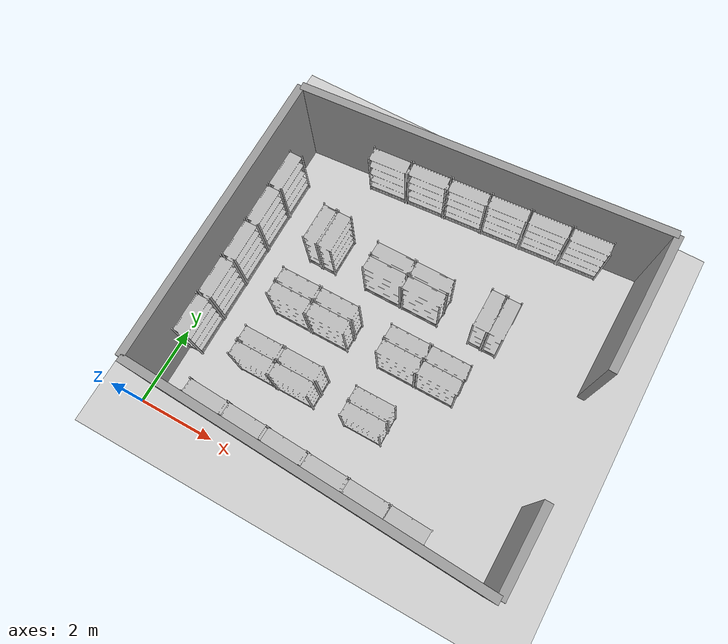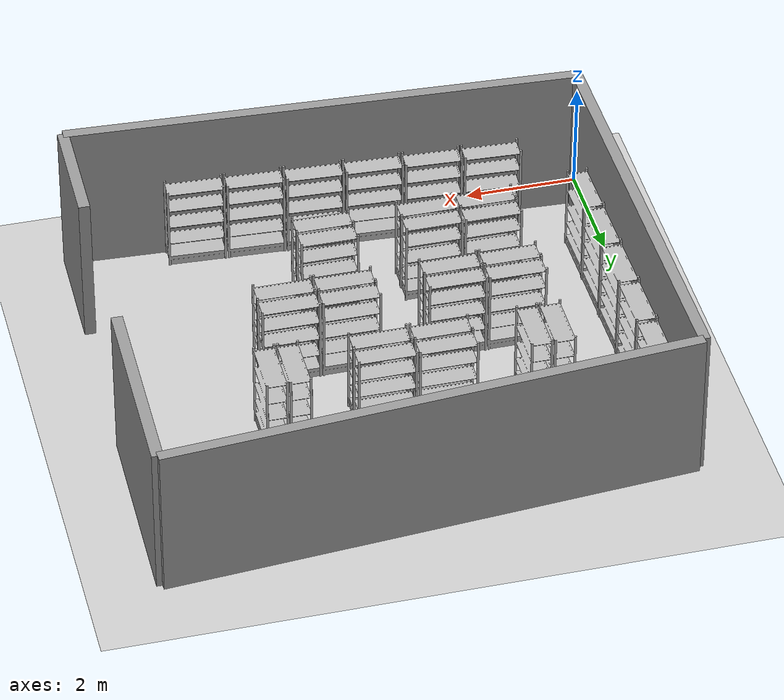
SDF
<sdf version="1.6">
  <world name="default">
    <light name="sun" type="directional">
      <cast_shadows>1</cast_shadows>
      <pose frame="">0 0 10 0 -0 0</pose>
      <diffuse>0.8 0.8 0.8 1</diffuse>
      <specular>0.2 0.2 0.2 1</specular>
      <attenuation>
        <range>1000</range>
        <constant>0.9</constant>
        <linear>0.01</linear>
        <quadratic>0.001</quadratic>
      </attenuation>
      <direction>-0.5 0.1 -0.9</direction>
    </light>
    <model name="ground_plane">
      <static>1</static>
      <link name="link">
        <collision name="collision">
          <geometry>
            <plane>
              <normal>0 0 1</normal>
              <size>100 100</size>
            </plane>
          </geometry>
          <surface>
            <contact>
              <collide_bitmask>65535</collide_bitmask>
              <ode />
            </contact>
            <friction>
              <ode>
                <mu>1000</mu>
                <mu2>1000</mu2>
              </ode>
              <torsional>
                <ode />
              </torsional>
            </friction>
            <bounce />
          </surface>
          <max_contacts>10</max_contacts>
        </collision>
        <visual name="visual">
          <cast_shadows>0</cast_shadows>
          <geometry>
            <plane>
              <normal>0 0 1</normal>
              <size>100 100</size>
            </plane>
          </geometry>
          <material>
            <script>
              <uri>file://media/materials/scripts/gazebo.material</uri>
              <name>Gazebo/Grey</name>
            </script>
          </material>
        </visual>
        <self_collide>0</self_collide>
        <enable_wind>0</enable_wind>
        <kinematic>0</kinematic>
      </link>
    </model>
    <gravity>0 0 -9.8</gravity>
    <magnetic_field>6e-06 2.3e-05 -4.2e-05</magnetic_field>
    <atmosphere type="adiabatic" />
    <physics name="default_physics" default="0" type="ode">
      <max_step_size>0.001</max_step_size>
      <real_time_factor>1</real_time_factor>
      <real_time_update_rate>1000</real_time_update_rate>
    </physics>
    <scene>
      <ambient>0.4 0.4 0.4 1</ambient>
      <background>0.7 0.7 0.7 1</background>
      <shadows>1</shadows>
    </scene>
    <audio>
      <device>default</device>
    </audio>
    <wind />
    <spherical_coordinates>
      <surface_model>EARTH_WGS84</surface_model>
      <latitude_deg>0</latitude_deg>
      <longitude_deg>0</longitude_deg>
      <elevation>0</elevation>
      <heading_deg>0</heading_deg>
    </spherical_coordinates>
    <gui fullscreen="0">
      <camera name="user_camera">
        <pose frame="">5.5458 -17.3868 19.7357 0 0.841797 1.67218</pose>
        <view_controller>orbit</view_controller>
        <projection_type>perspective</projection_type>
      </camera>
    </gui>
    <plugin name="ActorPosesPlugin" filename="libActorPosesPlugin.so" />
    <model name="store_shelf_moduled_0">
      <link name="link">
        <collision name="collision">
          <geometry>
            <mesh>
              <uri>model://store_shelf_moduled/meshes/store_shelf_moduled.dae</uri>
            </mesh>
          </geometry>
        </collision>
        <visual name="visual">
          <geometry>
            <mesh>
              <uri>model://store_shelf_moduled/meshes/store_shelf_moduled.dae</uri>
            </mesh>
          </geometry>
        </visual>
        <inertial>
          <mass>1000</mass>
          <inertia>
            <ixx>840083</ixx>
            <ixy>0</ixy>
            <ixz>0</ixz>
            <iyy>475500</iyy>
            <iyz>0</iyz>
            <izz>1.30208e+06</izz>
          </inertia>
        </inertial>
        <self_collide>0</self_collide>
        <enable_wind>0</enable_wind>
        <kinematic>0</kinematic>
      </link>
      <static>1</static>
      <pose frame="">1.23472 0.5698885 0 0 0 -0.04721763</pose>
    </model>
    <model name="store_shelf_moduled_1">
      <link name="link">
        <collision name="collision">
          <geometry>
            <mesh>
              <uri>model://store_shelf_moduled/meshes/store_shelf_moduled.dae</uri>
            </mesh>
          </geometry>
        </collision>
        <visual name="visual">
          <geometry>
            <mesh>
              <uri>model://store_shelf_moduled/meshes/store_shelf_moduled.dae</uri>
            </mesh>
          </geometry>
        </visual>
        <inertial>
          <mass>1000</mass>
          <inertia>
            <ixx>840083</ixx>
            <ixy>0</ixy>
            <ixz>0</ixz>
            <iyy>475500</iyy>
            <iyz>0</iyz>
            <izz>1.30208e+06</izz>
          </inertia>
        </inertial>
        <self_collide>0</self_collide>
        <enable_wind>0</enable_wind>
        <kinematic>0</kinematic>
      </link>
      <static>1</static>
      <pose frame="">2.29472 0.5198885 0 0 0 -0.04721763</pose>
    </model>
    <model name="store_shelf_moduled_2">
      <link name="link">
        <collision name="collision">
          <geometry>
            <mesh>
              <uri>model://store_shelf_moduled/meshes/store_shelf_moduled.dae</uri>
            </mesh>
          </geometry>
        </collision>
        <visual name="visual">
          <geometry>
            <mesh>
              <uri>model://store_shelf_moduled/meshes/store_shelf_moduled.dae</uri>
            </mesh>
          </geometry>
        </visual>
        <inertial>
          <mass>1000</mass>
          <inertia>
            <ixx>840083</ixx>
            <ixy>0</ixy>
            <ixz>0</ixz>
            <iyy>475500</iyy>
            <iyz>0</iyz>
            <izz>1.30208e+06</izz>
          </inertia>
        </inertial>
        <self_collide>0</self_collide>
        <enable_wind>0</enable_wind>
        <kinematic>0</kinematic>
      </link>
      <static>1</static>
      <pose frame="">3.35472 0.4698885 0 0 0 -0.04721763</pose>
    </model>
    <model name="store_shelf_moduled_3">
      <link name="link">
        <collision name="collision">
          <geometry>
            <mesh>
              <uri>model://store_shelf_moduled/meshes/store_shelf_moduled.dae</uri>
            </mesh>
          </geometry>
        </collision>
        <visual name="visual">
          <geometry>
            <mesh>
              <uri>model://store_shelf_moduled/meshes/store_shelf_moduled.dae</uri>
            </mesh>
          </geometry>
        </visual>
        <inertial>
          <mass>1000</mass>
          <inertia>
            <ixx>840083</ixx>
            <ixy>0</ixy>
            <ixz>0</ixz>
            <iyy>475500</iyy>
            <iyz>0</iyz>
            <izz>1.30208e+06</izz>
          </inertia>
        </inertial>
        <self_collide>0</self_collide>
        <enable_wind>0</enable_wind>
        <kinematic>0</kinematic>
      </link>
      <static>1</static>
      <pose frame="">4.41472 0.4198885 0 0 0 -0.04721763</pose>
    </model>
    <model name="store_shelf_moduled_4">
      <link name="link">
        <collision name="collision">
          <geometry>
            <mesh>
              <uri>model://store_shelf_moduled/meshes/store_shelf_moduled.dae</uri>
            </mesh>
          </geometry>
        </collision>
        <visual name="visual">
          <geometry>
            <mesh>
              <uri>model://store_shelf_moduled/meshes/store_shelf_moduled.dae</uri>
            </mesh>
          </geometry>
        </visual>
        <inertial>
          <mass>1000</mass>
          <inertia>
            <ixx>840083</ixx>
            <ixy>0</ixy>
            <ixz>0</ixz>
            <iyy>475500</iyy>
            <iyz>0</iyz>
            <izz>1.30208e+06</izz>
          </inertia>
        </inertial>
        <self_collide>0</self_collide>
        <enable_wind>0</enable_wind>
        <kinematic>0</kinematic>
      </link>
      <static>1</static>
      <pose frame="">5.47472 0.3698885 0 0 0 -0.04721763</pose>
    </model>
    <model name="store_shelf_moduled_5">
      <link name="link">
        <collision name="collision">
          <geometry>
            <mesh>
              <uri>model://store_shelf_moduled/meshes/store_shelf_moduled.dae</uri>
            </mesh>
          </geometry>
        </collision>
        <visual name="visual">
          <geometry>
            <mesh>
              <uri>model://store_shelf_moduled/meshes/store_shelf_moduled.dae</uri>
            </mesh>
          </geometry>
        </visual>
        <inertial>
          <mass>1000</mass>
          <inertia>
            <ixx>840083</ixx>
            <ixy>0</ixy>
            <ixz>0</ixz>
            <iyy>475500</iyy>
            <iyz>0</iyz>
            <izz>1.30208e+06</izz>
          </inertia>
        </inertial>
        <self_collide>0</self_collide>
        <enable_wind>0</enable_wind>
        <kinematic>0</kinematic>
      </link>
      <static>1</static>
      <pose frame="">6.53472 0.3198886 0 0 0 -0.04721763</pose>
    </model>
    <model name="store_shelf_moduled_6">
      <link name="link">
        <collision name="collision">
          <geometry>
            <mesh>
              <uri>model://store_shelf_moduled/meshes/store_shelf_moduled.dae</uri>
            </mesh>
          </geometry>
        </collision>
        <visual name="visual">
          <geometry>
            <mesh>
              <uri>model://store_shelf_moduled/meshes/store_shelf_moduled.dae</uri>
            </mesh>
          </geometry>
        </visual>
        <inertial>
          <mass>1000</mass>
          <inertia>
            <ixx>840083</ixx>
            <ixy>0</ixy>
            <ixz>0</ixz>
            <iyy>475500</iyy>
            <iyz>0</iyz>
            <izz>1.30208e+06</izz>
          </inertia>
        </inertial>
        <self_collide>0</self_collide>
        <enable_wind>0</enable_wind>
        <kinematic>0</kinematic>
      </link>
      <static>1</static>
      <pose frame="">8.347719 8.560299 0 0 0 -3.064327</pose>
    </model>
    <model name="store_shelf_moduled_7">
      <link name="link">
        <collision name="collision">
          <geometry>
            <mesh>
              <uri>model://store_shelf_moduled/meshes/store_shelf_moduled.dae</uri>
            </mesh>
          </geometry>
        </collision>
        <visual name="visual">
          <geometry>
            <mesh>
              <uri>model://store_shelf_moduled/meshes/store_shelf_moduled.dae</uri>
            </mesh>
          </geometry>
        </visual>
        <inertial>
          <mass>1000</mass>
          <inertia>
            <ixx>840083</ixx>
            <ixy>0</ixy>
            <ixz>0</ixz>
            <iyy>475500</iyy>
            <iyz>0</iyz>
            <izz>1.30208e+06</izz>
          </inertia>
        </inertial>
        <self_collide>0</self_collide>
        <enable_wind>0</enable_wind>
        <kinematic>0</kinematic>
      </link>
      <static>1</static>
      <pose frame="">7.287719 8.480298 0 0 0 -3.064327</pose>
    </model>
    <model name="store_shelf_moduled_8">
      <link name="link">
        <collision name="collision">
          <geometry>
            <mesh>
              <uri>model://store_shelf_moduled/meshes/store_shelf_moduled.dae</uri>
            </mesh>
          </geometry>
        </collision>
        <visual name="visual">
          <geometry>
            <mesh>
              <uri>model://store_shelf_moduled/meshes/store_shelf_moduled.dae</uri>
            </mesh>
          </geometry>
        </visual>
        <inertial>
          <mass>1000</mass>
          <inertia>
            <ixx>840083</ixx>
            <ixy>0</ixy>
            <ixz>0</ixz>
            <iyy>475500</iyy>
            <iyz>0</iyz>
            <izz>1.30208e+06</izz>
          </inertia>
        </inertial>
        <self_collide>0</self_collide>
        <enable_wind>0</enable_wind>
        <kinematic>0</kinematic>
      </link>
      <static>1</static>
      <pose frame="">6.227719 8.400298 0 0 0 -3.064327</pose>
    </model>
    <model name="store_shelf_moduled_9">
      <link name="link">
        <collision name="collision">
          <geometry>
            <mesh>
              <uri>model://store_shelf_moduled/meshes/store_shelf_moduled.dae</uri>
            </mesh>
          </geometry>
        </collision>
        <visual name="visual">
          <geometry>
            <mesh>
              <uri>model://store_shelf_moduled/meshes/store_shelf_moduled.dae</uri>
            </mesh>
          </geometry>
        </visual>
        <inertial>
          <mass>1000</mass>
          <inertia>
            <ixx>840083</ixx>
            <ixy>0</ixy>
            <ixz>0</ixz>
            <iyy>475500</iyy>
            <iyz>0</iyz>
            <izz>1.30208e+06</izz>
          </inertia>
        </inertial>
        <self_collide>0</self_collide>
        <enable_wind>0</enable_wind>
        <kinematic>0</kinematic>
      </link>
      <static>1</static>
      <pose frame="">5.177719 8.320298 0 0 0 -3.064327</pose>
    </model>
    <model name="store_shelf_moduled_10">
      <link name="link">
        <collision name="collision">
          <geometry>
            <mesh>
              <uri>model://store_shelf_moduled/meshes/store_shelf_moduled.dae</uri>
            </mesh>
          </geometry>
        </collision>
        <visual name="visual">
          <geometry>
            <mesh>
              <uri>model://store_shelf_moduled/meshes/store_shelf_moduled.dae</uri>
            </mesh>
          </geometry>
        </visual>
        <inertial>
          <mass>1000</mass>
          <inertia>
            <ixx>840083</ixx>
            <ixy>0</ixy>
            <ixz>0</ixz>
            <iyy>475500</iyy>
            <iyz>0</iyz>
            <izz>1.30208e+06</izz>
          </inertia>
        </inertial>
        <self_collide>0</self_collide>
        <enable_wind>0</enable_wind>
        <kinematic>0</kinematic>
      </link>
      <static>1</static>
      <pose frame="">4.117719 8.240298 0 0 0 -3.064327</pose>
    </model>
    <model name="store_shelf_moduled_11">
      <link name="link">
        <collision name="collision">
          <geometry>
            <mesh>
              <uri>model://store_shelf_moduled/meshes/store_shelf_moduled.dae</uri>
            </mesh>
          </geometry>
        </collision>
        <visual name="visual">
          <geometry>
            <mesh>
              <uri>model://store_shelf_moduled/meshes/store_shelf_moduled.dae</uri>
            </mesh>
          </geometry>
        </visual>
        <inertial>
          <mass>1000</mass>
          <inertia>
            <ixx>840083</ixx>
            <ixy>0</ixy>
            <ixz>0</ixz>
            <iyy>475500</iyy>
            <iyz>0</iyz>
            <izz>1.30208e+06</izz>
          </inertia>
        </inertial>
        <self_collide>0</self_collide>
        <enable_wind>0</enable_wind>
        <kinematic>0</kinematic>
      </link>
      <static>1</static>
      <pose frame="">3.057719 8.150298 0 0 0 -3.064327</pose>
    </model>
    <model name="store_shelf_moduled_12">
      <link name="link">
        <collision name="collision">
          <geometry>
            <mesh>
              <uri>model://store_shelf_moduled/meshes/store_shelf_moduled.dae</uri>
            </mesh>
          </geometry>
        </collision>
        <visual name="visual">
          <geometry>
            <mesh>
              <uri>model://store_shelf_moduled/meshes/store_shelf_moduled.dae</uri>
            </mesh>
          </geometry>
        </visual>
        <inertial>
          <mass>1000</mass>
          <inertia>
            <ixx>840083</ixx>
            <ixy>0</ixy>
            <ixz>0</ixz>
            <iyy>475500</iyy>
            <iyz>0</iyz>
            <izz>1.30208e+06</izz>
          </inertia>
        </inertial>
        <self_collide>0</self_collide>
        <enable_wind>0</enable_wind>
        <kinematic>0</kinematic>
      </link>
      <static>1</static>
      <pose frame="">0.2099943 6.971067 0 0 0 -1.56013</pose>
    </model>
    <model name="store_shelf_moduled_13">
      <link name="link">
        <collision name="collision">
          <geometry>
            <mesh>
              <uri>model://store_shelf_moduled/meshes/store_shelf_moduled.dae</uri>
            </mesh>
          </geometry>
        </collision>
        <visual name="visual">
          <geometry>
            <mesh>
              <uri>model://store_shelf_moduled/meshes/store_shelf_moduled.dae</uri>
            </mesh>
          </geometry>
        </visual>
        <inertial>
          <mass>1000</mass>
          <inertia>
            <ixx>840083</ixx>
            <ixy>0</ixy>
            <ixz>0</ixz>
            <iyy>475500</iyy>
            <iyz>0</iyz>
            <izz>1.30208e+06</izz>
          </inertia>
        </inertial>
        <self_collide>0</self_collide>
        <enable_wind>0</enable_wind>
        <kinematic>0</kinematic>
      </link>
      <static>1</static>
      <pose frame="">0.2199943 5.911067 0 0 0 -1.56013</pose>
    </model>
    <model name="store_shelf_moduled_14">
      <link name="link">
        <collision name="collision">
          <geometry>
            <mesh>
              <uri>model://store_shelf_moduled/meshes/store_shelf_moduled.dae</uri>
            </mesh>
          </geometry>
        </collision>
        <visual name="visual">
          <geometry>
            <mesh>
              <uri>model://store_shelf_moduled/meshes/store_shelf_moduled.dae</uri>
            </mesh>
          </geometry>
        </visual>
        <inertial>
          <mass>1000</mass>
          <inertia>
            <ixx>840083</ixx>
            <ixy>0</ixy>
            <ixz>0</ixz>
            <iyy>475500</iyy>
            <iyz>0</iyz>
            <izz>1.30208e+06</izz>
          </inertia>
        </inertial>
        <self_collide>0</self_collide>
        <enable_wind>0</enable_wind>
        <kinematic>0</kinematic>
      </link>
      <static>1</static>
      <pose frame="">0.2299943 4.851067 0 0 0 -1.56013</pose>
    </model>
    <model name="store_shelf_moduled_15">
      <link name="link">
        <collision name="collision">
          <geometry>
            <mesh>
              <uri>model://store_shelf_moduled/meshes/store_shelf_moduled.dae</uri>
            </mesh>
          </geometry>
        </collision>
        <visual name="visual">
          <geometry>
            <mesh>
              <uri>model://store_shelf_moduled/meshes/store_shelf_moduled.dae</uri>
            </mesh>
          </geometry>
        </visual>
        <inertial>
          <mass>1000</mass>
          <inertia>
            <ixx>840083</ixx>
            <ixy>0</ixy>
            <ixz>0</ixz>
            <iyy>475500</iyy>
            <iyz>0</iyz>
            <izz>1.30208e+06</izz>
          </inertia>
        </inertial>
        <self_collide>0</self_collide>
        <enable_wind>0</enable_wind>
        <kinematic>0</kinematic>
      </link>
      <static>1</static>
      <pose frame="">0.2399943 3.791067 0 0 0 -1.56013</pose>
    </model>
    <model name="store_shelf_moduled_16">
      <link name="link">
        <collision name="collision">
          <geometry>
            <mesh>
              <uri>model://store_shelf_moduled/meshes/store_shelf_moduled.dae</uri>
            </mesh>
          </geometry>
        </collision>
        <visual name="visual">
          <geometry>
            <mesh>
              <uri>model://store_shelf_moduled/meshes/store_shelf_moduled.dae</uri>
            </mesh>
          </geometry>
        </visual>
        <inertial>
          <mass>1000</mass>
          <inertia>
            <ixx>840083</ixx>
            <ixy>0</ixy>
            <ixz>0</ixz>
            <iyy>475500</iyy>
            <iyz>0</iyz>
            <izz>1.30208e+06</izz>
          </inertia>
        </inertial>
        <self_collide>0</self_collide>
        <enable_wind>0</enable_wind>
        <kinematic>0</kinematic>
      </link>
      <static>1</static>
      <pose frame="">0.2499943 2.731067 0 0 0 -1.56013</pose>
    </model>
    <model name="store_shelf_moduled_17">
      <link name="link">
        <collision name="collision">
          <geometry>
            <mesh>
              <uri>model://store_shelf_moduled/meshes/store_shelf_moduled.dae</uri>
            </mesh>
          </geometry>
        </collision>
        <visual name="visual">
          <geometry>
            <mesh>
              <uri>model://store_shelf_moduled/meshes/store_shelf_moduled.dae</uri>
            </mesh>
          </geometry>
        </visual>
        <inertial>
          <mass>1000</mass>
          <inertia>
            <ixx>840083</ixx>
            <ixy>0</ixy>
            <ixz>0</ixz>
            <iyy>475500</iyy>
            <iyz>0</iyz>
            <izz>1.30208e+06</izz>
          </inertia>
        </inertial>
        <self_collide>0</self_collide>
        <enable_wind>0</enable_wind>
        <kinematic>0</kinematic>
      </link>
      <static>1</static>
      <pose frame="">3.32 5.49 0 0 0 0</pose>
    </model>
    <model name="store_shelf_moduled_18">
      <link name="link">
        <collision name="collision">
          <geometry>
            <mesh>
              <uri>model://store_shelf_moduled/meshes/store_shelf_moduled.dae</uri>
            </mesh>
          </geometry>
        </collision>
        <visual name="visual">
          <geometry>
            <mesh>
              <uri>model://store_shelf_moduled/meshes/store_shelf_moduled.dae</uri>
            </mesh>
          </geometry>
        </visual>
        <inertial>
          <mass>1000</mass>
          <inertia>
            <ixx>840083</ixx>
            <ixy>0</ixy>
            <ixz>0</ixz>
            <iyy>475500</iyy>
            <iyz>0</iyz>
            <izz>1.30208e+06</izz>
          </inertia>
        </inertial>
        <self_collide>0</self_collide>
        <enable_wind>0</enable_wind>
        <kinematic>0</kinematic>
      </link>
      <static>1</static>
      <pose frame="">4.38 5.49 0 0 0 -3.141593</pose>
    </model>
    <model name="store_shelf_moduled_19">
      <link name="link">
        <collision name="collision">
          <geometry>
            <mesh>
              <uri>model://store_shelf_moduled/meshes/store_shelf_moduled.dae</uri>
            </mesh>
          </geometry>
        </collision>
        <visual name="visual">
          <geometry>
            <mesh>
              <uri>model://store_shelf_moduled/meshes/store_shelf_moduled.dae</uri>
            </mesh>
          </geometry>
        </visual>
        <inertial>
          <mass>1000</mass>
          <inertia>
            <ixx>840083</ixx>
            <ixy>0</ixy>
            <ixz>0</ixz>
            <iyy>475500</iyy>
            <iyz>0</iyz>
            <izz>1.30208e+06</izz>
          </inertia>
        </inertial>
        <self_collide>0</self_collide>
        <enable_wind>0</enable_wind>
        <kinematic>0</kinematic>
      </link>
      <static>1</static>
      <pose frame="">4.38 5.49 0 0 0 0</pose>
    </model>
    <model name="store_shelf_moduled_20">
      <link name="link">
        <collision name="collision">
          <geometry>
            <mesh>
              <uri>model://store_shelf_moduled/meshes/store_shelf_moduled.dae</uri>
            </mesh>
          </geometry>
        </collision>
        <visual name="visual">
          <geometry>
            <mesh>
              <uri>model://store_shelf_moduled/meshes/store_shelf_moduled.dae</uri>
            </mesh>
          </geometry>
        </visual>
        <inertial>
          <mass>1000</mass>
          <inertia>
            <ixx>840083</ixx>
            <ixy>0</ixy>
            <ixz>0</ixz>
            <iyy>475500</iyy>
            <iyz>0</iyz>
            <izz>1.30208e+06</izz>
          </inertia>
        </inertial>
        <self_collide>0</self_collide>
        <enable_wind>0</enable_wind>
        <kinematic>0</kinematic>
      </link>
      <static>1</static>
      <pose frame="">5.44 5.49 0 0 0 -3.141593</pose>
    </model>
    <model name="store_shelf_moduled_21">
      <link name="link">
        <collision name="collision">
          <geometry>
            <mesh>
              <uri>model://store_shelf_moduled/meshes/store_shelf_moduled.dae</uri>
            </mesh>
          </geometry>
        </collision>
        <visual name="visual">
          <geometry>
            <mesh>
              <uri>model://store_shelf_moduled/meshes/store_shelf_moduled.dae</uri>
            </mesh>
          </geometry>
        </visual>
        <inertial>
          <mass>1000</mass>
          <inertia>
            <ixx>840083</ixx>
            <ixy>0</ixy>
            <ixz>0</ixz>
            <iyy>475500</iyy>
            <iyz>0</iyz>
            <izz>1.30208e+06</izz>
          </inertia>
        </inertial>
        <self_collide>0</self_collide>
        <enable_wind>0</enable_wind>
        <kinematic>0</kinematic>
      </link>
      <static>1</static>
      <pose frame="">1.68 3.85 0 0 0 0</pose>
    </model>
    <model name="store_shelf_moduled_22">
      <link name="link">
        <collision name="collision">
          <geometry>
            <mesh>
              <uri>model://store_shelf_moduled/meshes/store_shelf_moduled.dae</uri>
            </mesh>
          </geometry>
        </collision>
        <visual name="visual">
          <geometry>
            <mesh>
              <uri>model://store_shelf_moduled/meshes/store_shelf_moduled.dae</uri>
            </mesh>
          </geometry>
        </visual>
        <inertial>
          <mass>1000</mass>
          <inertia>
            <ixx>840083</ixx>
            <ixy>0</ixy>
            <ixz>0</ixz>
            <iyy>475500</iyy>
            <iyz>0</iyz>
            <izz>1.30208e+06</izz>
          </inertia>
        </inertial>
        <self_collide>0</self_collide>
        <enable_wind>0</enable_wind>
        <kinematic>0</kinematic>
      </link>
      <static>1</static>
      <pose frame="">2.74 3.85 0 0 0 -3.141593</pose>
    </model>
    <model name="store_shelf_moduled_23">
      <link name="link">
        <collision name="collision">
          <geometry>
            <mesh>
              <uri>model://store_shelf_moduled/meshes/store_shelf_moduled.dae</uri>
            </mesh>
          </geometry>
        </collision>
        <visual name="visual">
          <geometry>
            <mesh>
              <uri>model://store_shelf_moduled/meshes/store_shelf_moduled.dae</uri>
            </mesh>
          </geometry>
        </visual>
        <inertial>
          <mass>1000</mass>
          <inertia>
            <ixx>840083</ixx>
            <ixy>0</ixy>
            <ixz>0</ixz>
            <iyy>475500</iyy>
            <iyz>0</iyz>
            <izz>1.30208e+06</izz>
          </inertia>
        </inertial>
        <self_collide>0</self_collide>
        <enable_wind>0</enable_wind>
        <kinematic>0</kinematic>
      </link>
      <static>1</static>
      <pose frame="">2.74 3.85 0 0 0 0</pose>
    </model>
    <model name="store_shelf_moduled_24">
      <link name="link">
        <collision name="collision">
          <geometry>
            <mesh>
              <uri>model://store_shelf_moduled/meshes/store_shelf_moduled.dae</uri>
            </mesh>
          </geometry>
        </collision>
        <visual name="visual">
          <geometry>
            <mesh>
              <uri>model://store_shelf_moduled/meshes/store_shelf_moduled.dae</uri>
            </mesh>
          </geometry>
        </visual>
        <inertial>
          <mass>1000</mass>
          <inertia>
            <ixx>840083</ixx>
            <ixy>0</ixy>
            <ixz>0</ixz>
            <iyy>475500</iyy>
            <iyz>0</iyz>
            <izz>1.30208e+06</izz>
          </inertia>
        </inertial>
        <self_collide>0</self_collide>
        <enable_wind>0</enable_wind>
        <kinematic>0</kinematic>
      </link>
      <static>1</static>
      <pose frame="">3.8 3.85 0 0 0 -3.141593</pose>
    </model>
    <model name="store_shelf_moduled_25">
      <link name="link">
        <collision name="collision">
          <geometry>
            <mesh>
              <uri>model://store_shelf_moduled/meshes/store_shelf_moduled.dae</uri>
            </mesh>
          </geometry>
        </collision>
        <visual name="visual">
          <geometry>
            <mesh>
              <uri>model://store_shelf_moduled/meshes/store_shelf_moduled.dae</uri>
            </mesh>
          </geometry>
        </visual>
        <inertial>
          <mass>1000</mass>
          <inertia>
            <ixx>840083</ixx>
            <ixy>0</ixy>
            <ixz>0</ixz>
            <iyy>475500</iyy>
            <iyz>0</iyz>
            <izz>1.30208e+06</izz>
          </inertia>
        </inertial>
        <self_collide>0</self_collide>
        <enable_wind>0</enable_wind>
        <kinematic>0</kinematic>
      </link>
      <static>1</static>
      <pose frame="">6.66 5.07 0 0 0 1.570796</pose>
    </model>
    <model name="store_shelf_moduled_26">
      <link name="link">
        <collision name="collision">
          <geometry>
            <mesh>
              <uri>model://store_shelf_moduled/meshes/store_shelf_moduled.dae</uri>
            </mesh>
          </geometry>
        </collision>
        <visual name="visual">
          <geometry>
            <mesh>
              <uri>model://store_shelf_moduled/meshes/store_shelf_moduled.dae</uri>
            </mesh>
          </geometry>
        </visual>
        <inertial>
          <mass>1000</mass>
          <inertia>
            <ixx>840083</ixx>
            <ixy>0</ixy>
            <ixz>0</ixz>
            <iyy>475500</iyy>
            <iyz>0</iyz>
            <izz>1.30208e+06</izz>
          </inertia>
        </inertial>
        <self_collide>0</self_collide>
        <enable_wind>0</enable_wind>
        <kinematic>0</kinematic>
      </link>
      <static>1</static>
      <pose frame="">6.66 6.13 0 0 0 -1.570796</pose>
    </model>
    <model name="store_shelf_moduled_27">
      <link name="link">
        <collision name="collision">
          <geometry>
            <mesh>
              <uri>model://store_shelf_moduled/meshes/store_shelf_moduled.dae</uri>
            </mesh>
          </geometry>
        </collision>
        <visual name="visual">
          <geometry>
            <mesh>
              <uri>model://store_shelf_moduled/meshes/store_shelf_moduled.dae</uri>
            </mesh>
          </geometry>
        </visual>
        <inertial>
          <mass>1000</mass>
          <inertia>
            <ixx>840083</ixx>
            <ixy>0</ixy>
            <ixz>0</ixz>
            <iyy>475500</iyy>
            <iyz>0</iyz>
            <izz>1.30208e+06</izz>
          </inertia>
        </inertial>
        <self_collide>0</self_collide>
        <enable_wind>0</enable_wind>
        <kinematic>0</kinematic>
      </link>
      <static>1</static>
      <pose frame="">1.68 2.21 0 0 0 0</pose>
    </model>
    <model name="store_shelf_moduled_28">
      <link name="link">
        <collision name="collision">
          <geometry>
            <mesh>
              <uri>model://store_shelf_moduled/meshes/store_shelf_moduled.dae</uri>
            </mesh>
          </geometry>
        </collision>
        <visual name="visual">
          <geometry>
            <mesh>
              <uri>model://store_shelf_moduled/meshes/store_shelf_moduled.dae</uri>
            </mesh>
          </geometry>
        </visual>
        <inertial>
          <mass>1000</mass>
          <inertia>
            <ixx>840083</ixx>
            <ixy>0</ixy>
            <ixz>0</ixz>
            <iyy>475500</iyy>
            <iyz>0</iyz>
            <izz>1.30208e+06</izz>
          </inertia>
        </inertial>
        <self_collide>0</self_collide>
        <enable_wind>0</enable_wind>
        <kinematic>0</kinematic>
      </link>
      <static>1</static>
      <pose frame="">2.74 2.21 0 0 0 -3.141593</pose>
    </model>
    <model name="store_shelf_moduled_29">
      <link name="link">
        <collision name="collision">
          <geometry>
            <mesh>
              <uri>model://store_shelf_moduled/meshes/store_shelf_moduled.dae</uri>
            </mesh>
          </geometry>
        </collision>
        <visual name="visual">
          <geometry>
            <mesh>
              <uri>model://store_shelf_moduled/meshes/store_shelf_moduled.dae</uri>
            </mesh>
          </geometry>
        </visual>
        <inertial>
          <mass>1000</mass>
          <inertia>
            <ixx>840083</ixx>
            <ixy>0</ixy>
            <ixz>0</ixz>
            <iyy>475500</iyy>
            <iyz>0</iyz>
            <izz>1.30208e+06</izz>
          </inertia>
        </inertial>
        <self_collide>0</self_collide>
        <enable_wind>0</enable_wind>
        <kinematic>0</kinematic>
      </link>
      <static>1</static>
      <pose frame="">2.74 2.21 0 0 0 0</pose>
    </model>
    <model name="store_shelf_moduled_30">
      <link name="link">
        <collision name="collision">
          <geometry>
            <mesh>
              <uri>model://store_shelf_moduled/meshes/store_shelf_moduled.dae</uri>
            </mesh>
          </geometry>
        </collision>
        <visual name="visual">
          <geometry>
            <mesh>
              <uri>model://store_shelf_moduled/meshes/store_shelf_moduled.dae</uri>
            </mesh>
          </geometry>
        </visual>
        <inertial>
          <mass>1000</mass>
          <inertia>
            <ixx>840083</ixx>
            <ixy>0</ixy>
            <ixz>0</ixz>
            <iyy>475500</iyy>
            <iyz>0</iyz>
            <izz>1.30208e+06</izz>
          </inertia>
        </inertial>
        <self_collide>0</self_collide>
        <enable_wind>0</enable_wind>
        <kinematic>0</kinematic>
      </link>
      <static>1</static>
      <pose frame="">3.8 2.21 0 0 0 -3.141593</pose>
    </model>
    <model name="store_shelf_moduled_31">
      <link name="link">
        <collision name="collision">
          <geometry>
            <mesh>
              <uri>model://store_shelf_moduled/meshes/store_shelf_moduled.dae</uri>
            </mesh>
          </geometry>
        </collision>
        <visual name="visual">
          <geometry>
            <mesh>
              <uri>model://store_shelf_moduled/meshes/store_shelf_moduled.dae</uri>
            </mesh>
          </geometry>
        </visual>
        <inertial>
          <mass>1000</mass>
          <inertia>
            <ixx>840083</ixx>
            <ixy>0</ixy>
            <ixz>0</ixz>
            <iyy>475500</iyy>
            <iyz>0</iyz>
            <izz>1.30208e+06</izz>
          </inertia>
        </inertial>
        <self_collide>0</self_collide>
        <enable_wind>0</enable_wind>
        <kinematic>0</kinematic>
      </link>
      <static>1</static>
      <pose frame="">4.6 3.85 0 0 0 0</pose>
    </model>
    <model name="store_shelf_moduled_32">
      <link name="link">
        <collision name="collision">
          <geometry>
            <mesh>
              <uri>model://store_shelf_moduled/meshes/store_shelf_moduled.dae</uri>
            </mesh>
          </geometry>
        </collision>
        <visual name="visual">
          <geometry>
            <mesh>
              <uri>model://store_shelf_moduled/meshes/store_shelf_moduled.dae</uri>
            </mesh>
          </geometry>
        </visual>
        <inertial>
          <mass>1000</mass>
          <inertia>
            <ixx>840083</ixx>
            <ixy>0</ixy>
            <ixz>0</ixz>
            <iyy>475500</iyy>
            <iyz>0</iyz>
            <izz>1.30208e+06</izz>
          </inertia>
        </inertial>
        <self_collide>0</self_collide>
        <enable_wind>0</enable_wind>
        <kinematic>0</kinematic>
      </link>
      <static>1</static>
      <pose frame="">5.66 3.85 0 0 0 -3.141593</pose>
    </model>
    <model name="store_shelf_moduled_33">
      <link name="link">
        <collision name="collision">
          <geometry>
            <mesh>
              <uri>model://store_shelf_moduled/meshes/store_shelf_moduled.dae</uri>
            </mesh>
          </geometry>
        </collision>
        <visual name="visual">
          <geometry>
            <mesh>
              <uri>model://store_shelf_moduled/meshes/store_shelf_moduled.dae</uri>
            </mesh>
          </geometry>
        </visual>
        <inertial>
          <mass>1000</mass>
          <inertia>
            <ixx>840083</ixx>
            <ixy>0</ixy>
            <ixz>0</ixz>
            <iyy>475500</iyy>
            <iyz>0</iyz>
            <izz>1.30208e+06</izz>
          </inertia>
        </inertial>
        <self_collide>0</self_collide>
        <enable_wind>0</enable_wind>
        <kinematic>0</kinematic>
      </link>
      <static>1</static>
      <pose frame="">5.66 3.85 0 0 0 0</pose>
    </model>
    <model name="store_shelf_moduled_34">
      <link name="link">
        <collision name="collision">
          <geometry>
            <mesh>
              <uri>model://store_shelf_moduled/meshes/store_shelf_moduled.dae</uri>
            </mesh>
          </geometry>
        </collision>
        <visual name="visual">
          <geometry>
            <mesh>
              <uri>model://store_shelf_moduled/meshes/store_shelf_moduled.dae</uri>
            </mesh>
          </geometry>
        </visual>
        <inertial>
          <mass>1000</mass>
          <inertia>
            <ixx>840083</ixx>
            <ixy>0</ixy>
            <ixz>0</ixz>
            <iyy>475500</iyy>
            <iyz>0</iyz>
            <izz>1.30208e+06</izz>
          </inertia>
        </inertial>
        <self_collide>0</self_collide>
        <enable_wind>0</enable_wind>
        <kinematic>0</kinematic>
      </link>
      <static>1</static>
      <pose frame="">6.72 3.85 0 0 0 -3.141593</pose>
    </model>
    <model name="store_shelf_moduled_35">
      <link name="link">
        <collision name="collision">
          <geometry>
            <mesh>
              <uri>model://store_shelf_moduled/meshes/store_shelf_moduled.dae</uri>
            </mesh>
          </geometry>
        </collision>
        <visual name="visual">
          <geometry>
            <mesh>
              <uri>model://store_shelf_moduled/meshes/store_shelf_moduled.dae</uri>
            </mesh>
          </geometry>
        </visual>
        <inertial>
          <mass>1000</mass>
          <inertia>
            <ixx>840083</ixx>
            <ixy>0</ixy>
            <ixz>0</ixz>
            <iyy>475500</iyy>
            <iyz>0</iyz>
            <izz>1.30208e+06</izz>
          </inertia>
        </inertial>
        <self_collide>0</self_collide>
        <enable_wind>0</enable_wind>
        <kinematic>0</kinematic>
      </link>
      <static>1</static>
      <pose frame="">2.1 5.07 0 0 0 1.570796</pose>
    </model>
    <model name="store_shelf_moduled_36">
      <link name="link">
        <collision name="collision">
          <geometry>
            <mesh>
              <uri>model://store_shelf_moduled/meshes/store_shelf_moduled.dae</uri>
            </mesh>
          </geometry>
        </collision>
        <visual name="visual">
          <geometry>
            <mesh>
              <uri>model://store_shelf_moduled/meshes/store_shelf_moduled.dae</uri>
            </mesh>
          </geometry>
        </visual>
        <inertial>
          <mass>1000</mass>
          <inertia>
            <ixx>840083</ixx>
            <ixy>0</ixy>
            <ixz>0</ixz>
            <iyy>475500</iyy>
            <iyz>0</iyz>
            <izz>1.30208e+06</izz>
          </inertia>
        </inertial>
        <self_collide>0</self_collide>
        <enable_wind>0</enable_wind>
        <kinematic>0</kinematic>
      </link>
      <static>1</static>
      <pose frame="">2.1 6.13 0 0 0 -1.570796</pose>
    </model>
    <model name="store_shelf_moduled_37">
      <link name="link">
        <collision name="collision">
          <geometry>
            <mesh>
              <uri>model://store_shelf_moduled/meshes/store_shelf_moduled.dae</uri>
            </mesh>
          </geometry>
        </collision>
        <visual name="visual">
          <geometry>
            <mesh>
              <uri>model://store_shelf_moduled/meshes/store_shelf_moduled.dae</uri>
            </mesh>
          </geometry>
        </visual>
        <inertial>
          <mass>1000</mass>
          <inertia>
            <ixx>840083</ixx>
            <ixy>0</ixy>
            <ixz>0</ixz>
            <iyy>475500</iyy>
            <iyz>0</iyz>
            <izz>1.30208e+06</izz>
          </inertia>
        </inertial>
        <self_collide>0</self_collide>
        <enable_wind>0</enable_wind>
        <kinematic>0</kinematic>
      </link>
      <static>1</static>
      <pose frame="">4.6 2.21 0 0 0 0</pose>
    </model>
    <model name="store_shelf_moduled_38">
      <link name="link">
        <collision name="collision">
          <geometry>
            <mesh>
              <uri>model://store_shelf_moduled/meshes/store_shelf_moduled.dae</uri>
            </mesh>
          </geometry>
        </collision>
        <visual name="visual">
          <geometry>
            <mesh>
              <uri>model://store_shelf_moduled/meshes/store_shelf_moduled.dae</uri>
            </mesh>
          </geometry>
        </visual>
        <inertial>
          <mass>1000</mass>
          <inertia>
            <ixx>840083</ixx>
            <ixy>0</ixy>
            <ixz>0</ixz>
            <iyy>475500</iyy>
            <iyz>0</iyz>
            <izz>1.30208e+06</izz>
          </inertia>
        </inertial>
        <self_collide>0</self_collide>
        <enable_wind>0</enable_wind>
        <kinematic>0</kinematic>
      </link>
      <static>1</static>
      <pose frame="">5.66 2.21 0 0 0 -3.141593</pose>
    </model>
    <model name="grey_wall0">
      <static>1</static>
      <link name="link">
        <pose frame="">4.73 0.315 1.4 0 0 -0.04721763</pose>
        <visual name="visual">
          <cast_shadows>0</cast_shadows>
          <geometry>
            <box>
              <size>9.110154 0.2 2.8</size>
            </box>
          </geometry>
          <material>
            <name>vrc/grey_wall</name>
            <script>
              <uri>model://grey_wall/materials/scripts</uri>
              <uri>model://grey_wall/materials/textures</uri>
              <name>vrc/grey_wall</name>
            </script>
          </material>
        </visual>
        <collision name="collision">
          <geometry>
            <box>
              <size>9.110154 0.2 2.8</size>
            </box>
          </geometry>
          <max_contacts>5</max_contacts>
        </collision>
      </link>
    </model>
    <model name="grey_wall1">
      <static>1</static>
      <link name="link">
        <pose frame="">9.295 1.145 1.4 0 0 1.556443</pose>
        <visual name="visual">
          <cast_shadows>0</cast_shadows>
          <geometry>
            <box>
              <size>2.090215 0.2 2.8</size>
            </box>
          </geometry>
          <material>
            <name>vrc/grey_wall</name>
            <script>
              <uri>model://grey_wall/materials/scripts</uri>
              <uri>model://grey_wall/materials/textures</uri>
              <name>vrc/grey_wall</name>
            </script>
          </material>
        </visual>
        <collision name="collision">
          <geometry>
            <box>
              <size>2.090215 0.2 2.8</size>
            </box>
          </geometry>
          <max_contacts>5</max_contacts>
        </collision>
      </link>
    </model>
    <model name="grey_wall2">
      <static>1</static>
      <link name="link">
        <pose frame="">9.375 6.97 1.4 0 0 1.556752</pose>
        <visual name="visual">
          <cast_shadows>0</cast_shadows>
          <geometry>
            <box>
              <size>3.560351 0.2 2.8</size>
            </box>
          </geometry>
          <material>
            <name>vrc/grey_wall</name>
            <script>
              <uri>model://grey_wall/materials/scripts</uri>
              <uri>model://grey_wall/materials/textures</uri>
              <name>vrc/grey_wall</name>
            </script>
          </material>
        </visual>
        <collision name="collision">
          <geometry>
            <box>
              <size>3.560351 0.2 2.8</size>
            </box>
          </geometry>
          <max_contacts>5</max_contacts>
        </collision>
      </link>
    </model>
    <model name="grey_wall3">
      <static>1</static>
      <link name="link">
        <pose frame="">4.75 8.39 1.4 0 0 -3.064327</pose>
        <visual name="visual">
          <cast_shadows>0</cast_shadows>
          <geometry>
            <box>
              <size>9.327829 0.2 2.8</size>
            </box>
          </geometry>
          <material>
            <name>vrc/grey_wall</name>
            <script>
              <uri>model://grey_wall/materials/scripts</uri>
              <uri>model://grey_wall/materials/textures</uri>
              <name>vrc/grey_wall</name>
            </script>
          </material>
        </visual>
        <collision name="collision">
          <geometry>
            <box>
              <size>9.327829 0.2 2.8</size>
            </box>
          </geometry>
          <max_contacts>5</max_contacts>
        </collision>
      </link>
    </model>
    <model name="grey_wall4">
      <static>1</static>
      <link name="link">
        <pose frame="">0.14 4.28 1.4 0 0 -1.56013</pose>
        <visual name="visual">
          <cast_shadows>0</cast_shadows>
          <geometry>
            <box>
              <size>7.500427 0.2 2.8</size>
            </box>
          </geometry>
          <material>
            <name>vrc/grey_wall</name>
            <script>
              <uri>model://grey_wall/materials/scripts</uri>
              <uri>model://grey_wall/materials/textures</uri>
              <name>vrc/grey_wall</name>
            </script>
          </material>
        </visual>
        <collision name="collision">
          <geometry>
            <box>
              <size>7.500427 0.2 2.8</size>
            </box>
          </geometry>
          <max_contacts>5</max_contacts>
        </collision>
      </link>
    </model>
  </world>
</sdf>
